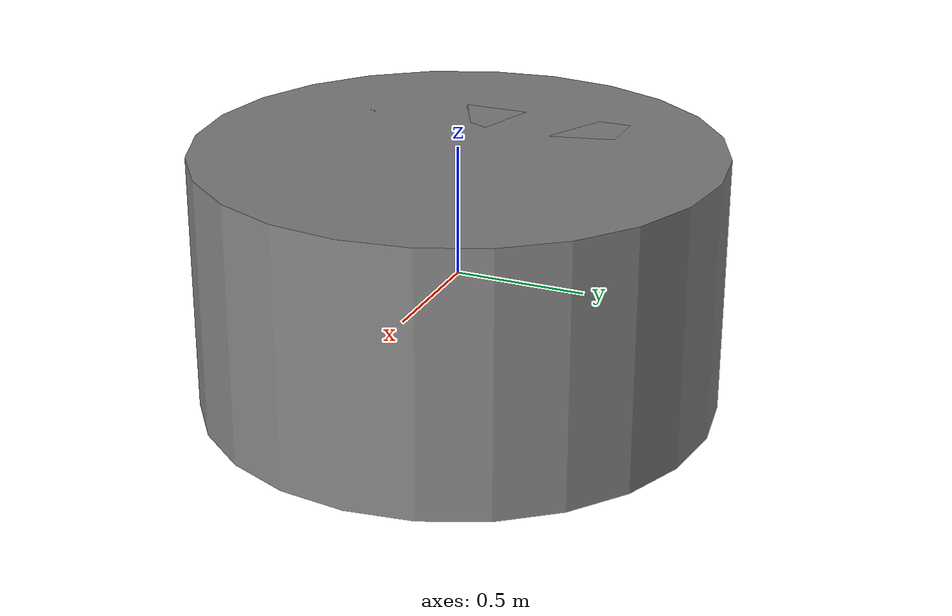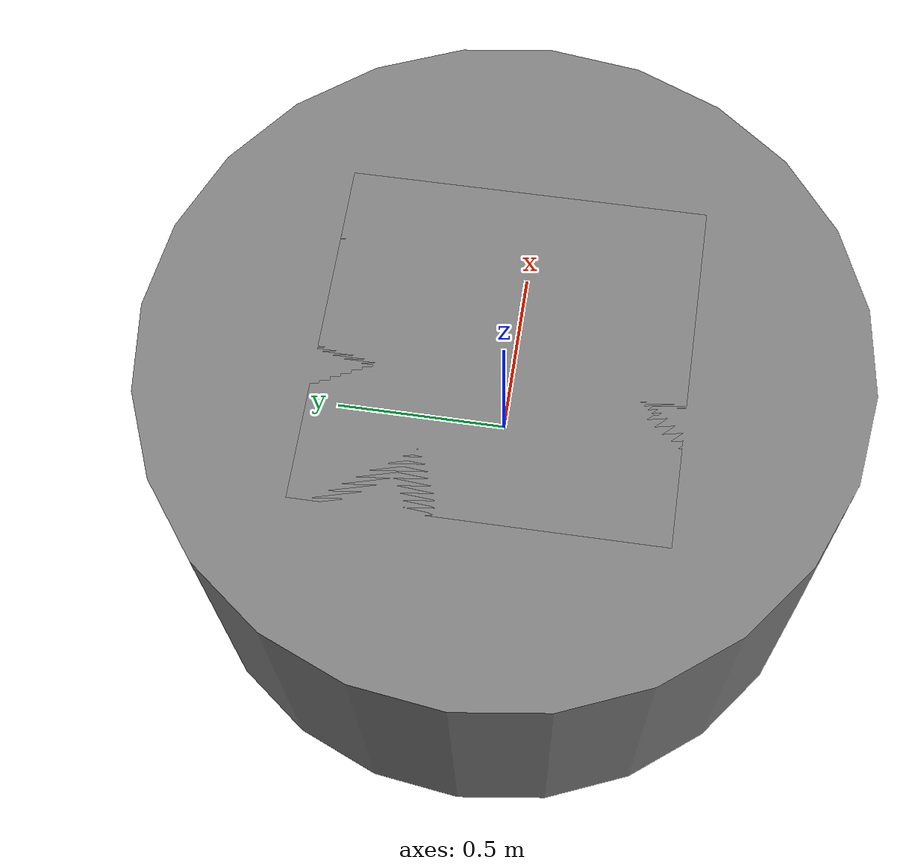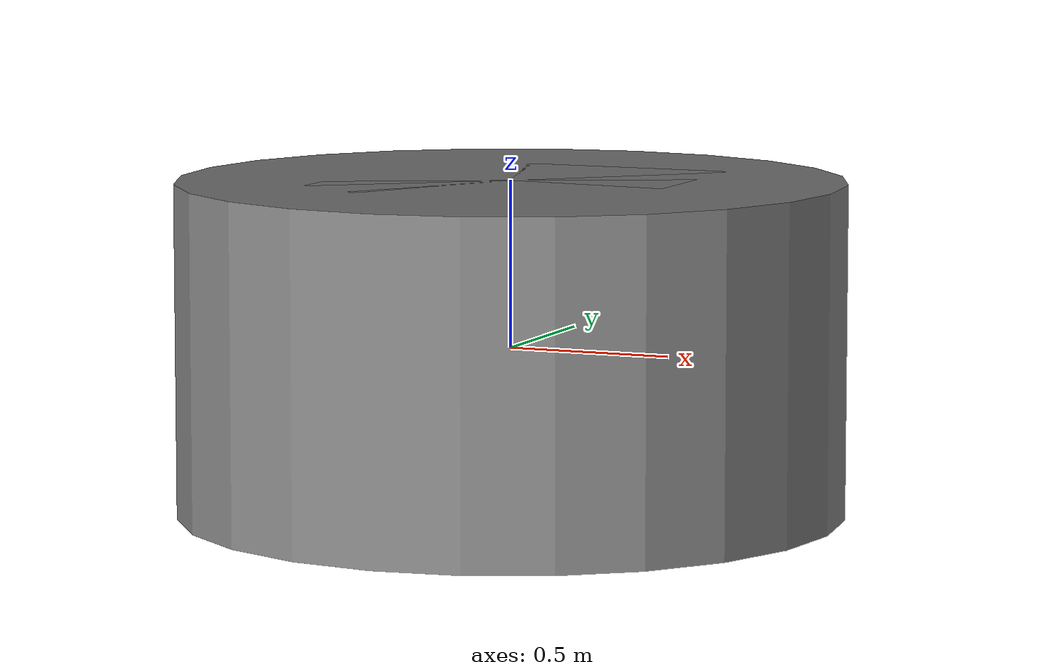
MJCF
<mujoco model="simple_humanoid">
  <compiler angle="radian" autolimits="true" meshdir="simple_humanoid_description"/>
  <asset>
    <mesh name="box" file="box.stl"/>
  </asset>
  <worldbody>
    <body name="WAIST_LINK0" pos="0 0 0">
      <inertial pos="0 0 0.0375" mass="27" diaginertia="1 1 1"/>
      <geom name="test" size="1 0.5" type="cylinder"/>
      <geom name="box" type="mesh" mesh="box"/>
      <body name="LLEG_LINK1" pos="0 0.09 0">
        <inertial pos="0 0.1 0" mass="2.5" diaginertia="1 1 1"/>
        <joint name="LLEG_HIP_R" pos="0 0 0" axis="1 0 0" range="0 0" actuatorfrcrange="-30 30"/>
        <body name="LLEG_LINK2">
          <inertial pos="0 0 -0.15" mass="2" diaginertia="1 1 1"/>
          <joint name="LLEG_HIP_P" pos="0 0 0" axis="0 1 0" range="0 0" actuatorfrcrange="-30 30"/>
          <body name="LLEG_LINK3" pos="0 0 -0.3535">
            <inertial pos="0 0.04 0" mass="5.1" diaginertia="1 1 1"/>
            <joint name="LLEG_HIP_Y" pos="0 0 0" axis="0 0 1" range="0 0" actuatorfrcrange="-30 30"/>
            <body name="LLEG_LINK4">
              <inertial pos="0 0 -0.3" mass="7" diaginertia="1 1 1"/>
              <joint name="LLEG_KNEE" pos="0 0 0" axis="0 1 0" range="0 0" actuatorfrcrange="-30 30"/>
              <body name="LLEG_LINK5" pos="0 0 -0.3">
                <inertial pos="-0.15 0 0" mass="2.5" diaginertia="1 1 1"/>
                <joint name="LLEG_ANKLE_P" pos="0 0 0" axis="0 1 0" range="0 0" actuatorfrcrange="-30 30"/>
                <body name="LLEG_LINK6">
                  <inertial pos="0.28 0 -0.2" mass="1.9" diaginertia="1 1 1"/>
                  <joint name="LLEG_ANKLE_R" pos="0 0 0" axis="1 0 0" range="0 0" actuatorfrcrange="-30 30"/>
                </body>
              </body>
            </body>
          </body>
        </body>
      </body>
      <body name="RLEG_LINK1" pos="0 -0.09 0">
        <inertial pos="0 -0.1 0" mass="2.5" diaginertia="1 1 1"/>
        <joint name="RLEG_HIP_R" pos="0 0 0" axis="1 0 0" range="0 0" actuatorfrcrange="-30 30"/>
        <body name="RLEG_LINK2">
          <inertial pos="0 0 -0.15" mass="2" diaginertia="1 1 1"/>
          <joint name="RLEG_HIP_P" pos="0 0 0" axis="0 1 0" range="0 0" actuatorfrcrange="-30 30"/>
          <body name="RLEG_LINK3" pos="0 0 -0.3535">
            <inertial pos="0 -0.04 0" mass="5.1" diaginertia="1 1 1"/>
            <joint name="RLEG_HIP_Y" pos="0 0 0" axis="0 0 1" range="0 0" actuatorfrcrange="-30 30"/>
            <body name="RLEG_LINK4">
              <inertial pos="0 0 -0.3" mass="7" diaginertia="1 1 1"/>
              <joint name="RLEG_KNEE" pos="0 0 0" axis="0 1 0" range="0 0" actuatorfrcrange="-30 30"/>
              <body name="RLEG_LINK5" pos="0 0 -0.3">
                <inertial pos="-0.15 0 0" mass="2.5" diaginertia="1 1 1"/>
                <joint name="RLEG_ANKLE_P" pos="0 0 0" axis="0 1 0" range="0 0" actuatorfrcrange="-30 30"/>
                <body name="RLEG_LINK6">
                  <inertial pos="0.28 0 -0.2" mass="1.9" diaginertia="1 1 1"/>
                  <joint name="RLEG_ANKLE_R" pos="0 0 0" axis="1 0 0" range="0 0" actuatorfrcrange="-30 30"/>
                </body>
              </body>
            </body>
          </body>
        </body>
      </body>
      <body name="WAIST_LINK1">
        <inertial pos="0 0 -0.1" mass="6" diaginertia="1 1 1"/>
        <joint name="WAIST_P" pos="0 0 0" axis="0 1 0" range="0 0" actuatorfrcrange="-30 30"/>
        <body name="WAIST_LINK2">
          <inertial pos="0.11 0 0.25" mass="30" diaginertia="1 1 1"/>
          <joint name="WAIST_R" pos="0 0 0" axis="1 0 0" range="0 0" actuatorfrcrange="-30 30"/>
          <body name="WAIST_LINK3" pos="0 0 0.35">
            <inertial pos="0 0 0" mass="13" diaginertia="1 1 1"/>
            <joint name="CHEST" pos="0 0 0" axis="0 0 1" range="0 0" actuatorfrcrange="-30 30"/>
            <body name="LARM_LINK1" pos="0 0.21 0">
              <inertial pos="0.1 0 0" mass="3" diaginertia="1 1 1"/>
              <joint name="LARM_SHOULDER_P" pos="0 0 0" axis="0 1 0" range="0 0" actuatorfrcrange="-30 30"/>
              <body name="LARM_LINK2">
                <inertial pos="0 0 -0.1" mass="0.6" diaginertia="1 1 1"/>
                <joint name="LARM_SHOULDER_R" pos="0 0 0" axis="1 0 0" range="0 0" actuatorfrcrange="-30 30"/>
                <body name="LARM_LINK3" pos="0 0 -0.263">
                  <inertial pos="0 0 0" mass="1" diaginertia="1 1 1"/>
                  <joint name="LARM_SHOULDER_Y" pos="0 0 0" axis="0 0 1" range="0 0" actuatorfrcrange="-30 30"/>
                  <body name="LARM_LINK4">
                    <inertial pos="0 0 -0.3" mass="0.6" diaginertia="1 1 1"/>
                    <joint name="LARM_ELBOW" pos="0 0 0" axis="0 1 0" range="0 0" actuatorfrcrange="-30 30"/>
                    <body name="LARM_LINK5" pos="0 0 -0.247">
                      <inertial pos="0 0 0.1" mass="0.4" diaginertia="1 1 1"/>
                      <joint name="LARM_WRIST_Y" pos="0 0 0" axis="0 0 1" range="0 0" actuatorfrcrange="-30 30"/>
                      <body name="LARM_LINK6">
                        <inertial pos="-0.1 0 0" mass="0.4" diaginertia="1 1 1"/>
                        <joint name="LARM_WRIST_P" pos="0 0 0" axis="0 1 0" range="0 0" actuatorfrcrange="-30 30"/>
                        <body name="LARM_LINK7">
                          <inertial pos="0 0 -0.1" mass="0.4" diaginertia="1 1 1"/>
                          <joint name="LARM_WRIST_R" pos="0 0 0" axis="1 0 0" range="0 0" actuatorfrcrange="-30 30"/>
                        </body>
                      </body>
                    </body>
                  </body>
                </body>
              </body>
            </body>
            <body name="RARM_LINK1" pos="0 -0.21 0">
              <inertial pos="0.1 0 0" mass="3" diaginertia="1 1 1"/>
              <joint name="RARM_SHOULDER_P" pos="0 0 0" axis="0 1 0" range="0 0" actuatorfrcrange="-30 30"/>
              <body name="RARM_LINK2">
                <inertial pos="0 0 -0.1" mass="0.6" diaginertia="1 1 1"/>
                <joint name="RARM_SHOULDER_R" pos="0 0 0" axis="1 0 0" range="0 0" actuatorfrcrange="-30 30"/>
                <body name="RARM_LINK3" pos="0 0 -0.263">
                  <inertial pos="0 0 0" mass="1" diaginertia="1 1 1"/>
                  <joint name="RARM_SHOULDER_Y" pos="0 0 0" axis="0 0 1" range="0 0" actuatorfrcrange="-30 30"/>
                  <body name="RARM_LINK4">
                    <inertial pos="0 0 -0.3" mass="0.6" diaginertia="1 1 1"/>
                    <joint name="RARM_ELBOW" pos="0 0 0" axis="0 1 0" range="0 0" actuatorfrcrange="-30 30"/>
                    <body name="RARM_LINK5" pos="0 0 -0.247">
                      <inertial pos="0 0 0.1" mass="0.4" diaginertia="1 1 1"/>
                      <joint name="RARM_WRIST_Y" pos="0 0 0" axis="0 0 1" range="0 0" actuatorfrcrange="-30 30"/>
                      <body name="RARM_LINK6">
                        <inertial pos="-0.1 0 0" mass="0.4" diaginertia="1 1 1"/>
                        <joint name="RARM_WRIST_P" pos="0 0 0" axis="0 1 0" range="0 0" actuatorfrcrange="-30 30"/>
                        <body name="RARM_LINK7">
                          <inertial pos="0 0 -0.1" mass="0.4" diaginertia="1 1 1"/>
                          <joint name="RARM_WRIST_R" pos="0 0 0" axis="1 0 0" range="0 0" actuatorfrcrange="-30 30"/>
                        </body>
                      </body>
                    </body>
                  </body>
                </body>
              </body>
            </body>
          </body>
        </body>
      </body>
    </body>
  </worldbody>
</mujoco>
